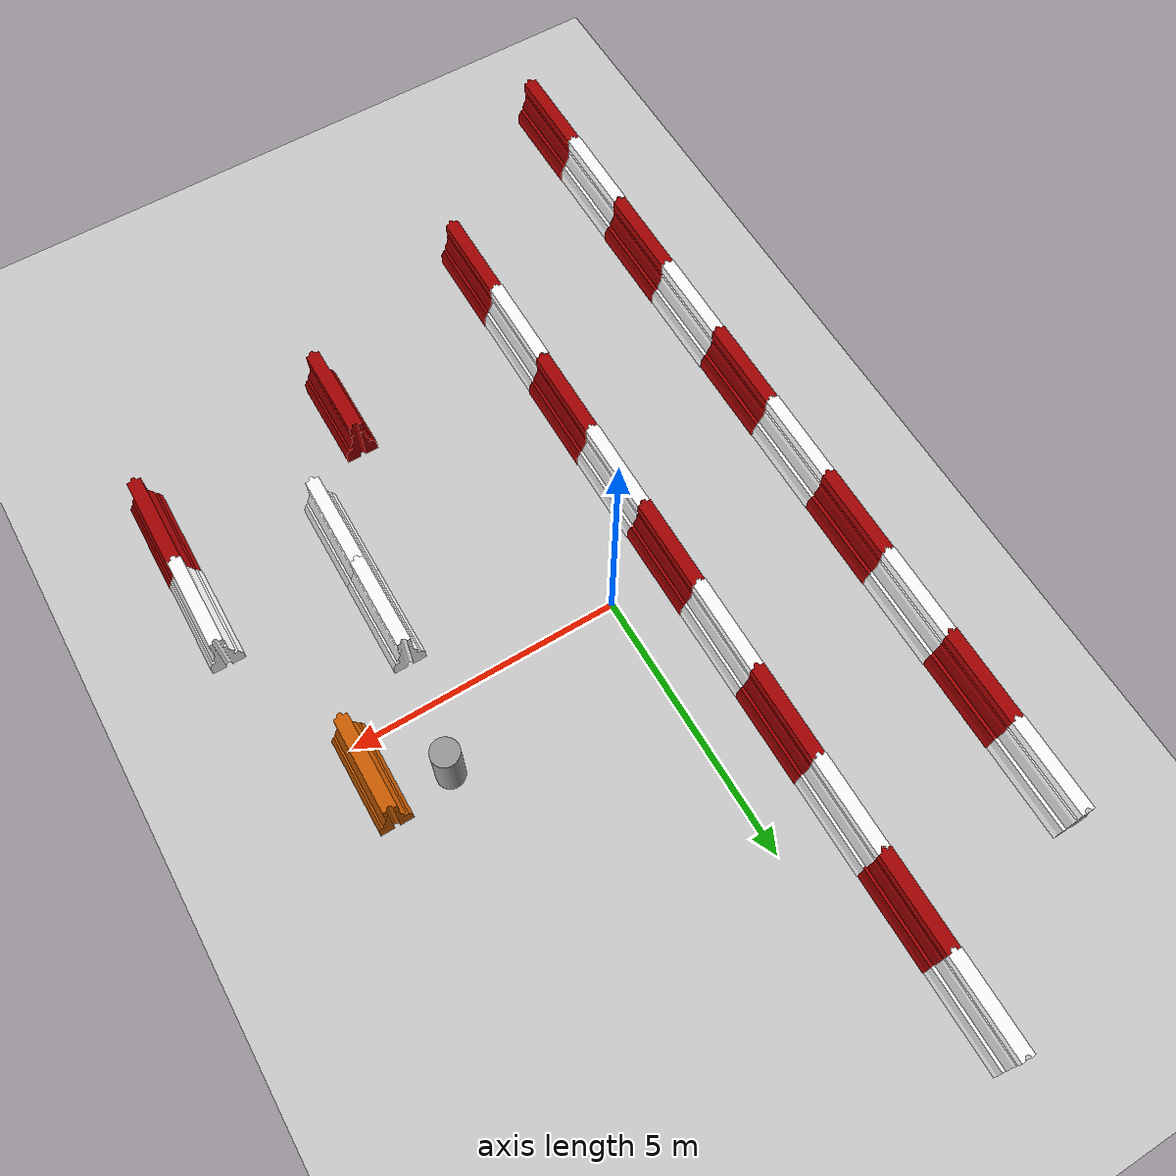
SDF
<sdf version="1.6">
 <world name="t-car_sim">
  <light name="sun" type="directional">
   <pose>0 0 10 0 -0 0</pose>
   <diffuse>0.8 0.8 0.8 1</diffuse>
   <specular>0.2 0.2 0.2 1</specular>
   <attenuation>
    <range>1000</range>
    <constant>0.9</constant>
    <linear>0.01</linear>
    <quadratic>0.001</quadratic>
   </attenuation>
   <direction>-0.5 0.1 -0.9</direction>
  </light>
  <model name="ground_plane">
   <static>1</static>
   <link name="link">
    <collision name="collision">
     <geometry><plane><normal>0 0 1</normal><size>100 100</size></plane></geometry>
     <surface><friction><ode><mu>100</mu><mu2>50</mu2></ode></friction></surface>
    </collision>
    <visual name="visual">
     <cast_shadows>0</cast_shadows>
     <geometry><plane><normal>0 0 1</normal><size>100 100</size></plane></geometry>
     <material>
      <script><uri>file://media/materials/scripts/gazebo.material</uri><name>Gazebo/Grey</name></script>
     </material>
    </visual>
   </link>
  </model>
  <gravity>0 0 -9.8</gravity>
  <magnetic_field>6e-06 2.3e-05 -4.2e-05</magnetic_field>
  <atmosphere type="adiabatic"/>
  <physics name="default_physics" default="0" type="ode">
   <max_step_size>0.001</max_step_size>
   <real_time_factor>1</real_time_factor>
   <real_time_update_rate>1000</real_time_update_rate>
  </physics>
  <scene><ambient>0.4 0.4 0.4 1</ambient><background>0.7 0.7 0.7 1</background><shadows>1</shadows></scene>
  <audio><device>default</device></audio>
  <spherical_coordinates>
   <surface_model>EARTH_WGS84</surface_model>
   <latitude_deg>0</latitude_deg>
   <longitude_deg>0</longitude_deg>
   <elevation>0</elevation>
   <heading_deg>0</heading_deg>
  </spherical_coordinates>
  <model name="10_barrier">
   <model name="redwhite_barrier">
    <model name="2barrier_red">
     <link name="link">
      <inertial>
       <mass>1</mass>
       <inertia><ixx>1</ixx><ixy>0</ixy><ixz>0</ixz><iyy>1</iyy><iyz>0</iyz><izz>1</izz></inertia>
      </inertial>
      <visual name="visual">
       <geometry>
        <mesh><uri>model://drc_practice_white_jersey_barrier/meshes/jersey_barrier.dae</uri></mesh>
       </geometry>
       <material>
        <script><name>ModelPreview_1::link::visual_MATERIAL_</name><uri>__default__</uri></script>
        <ambient>0.4 0.4 0.4 1</ambient>
        <shader type="vertex"><normal_map>__default__</normal_map></shader>
        <diffuse>0.643 0 0 1</diffuse>
        <specular>0.933 0.933 0.925 1</specular>
        <emissive>0.643 0 0 1</emissive>
       </material>
      </visual>
      <collision name="collision">
       <geometry>
        <mesh>
         <uri>/home/beyz/.gazebo/gazebo_models/drc_practice_white_jersey_barrier/meshes/jersey_barrier.dae</uri>
         <scale>1 1 1</scale>
        </mesh>
       </geometry>
       <surface>
        <friction>
         <ode><mu>1</mu><mu2>1</mu2><fdir1>0 0 0</fdir1><slip1>0</slip1><slip2>0</slip2></ode>
         <torsional>
          <coefficient>1</coefficient>
          <patch_radius>0</patch_radius>
          <surface_radius>0</surface_radius>
          <use_patch_radius>1</use_patch_radius>
          <ode><slip>0</slip></ode>
         </torsional>
        </friction>
        <bounce><restitution_coefficient>0</restitution_coefficient><threshold>1e+06</threshold></bounce>
        <contact>
         <collide_without_contact>0</collide_without_contact>
         <collide_without_contact_bitmask>1</collide_without_contact_bitmask>
         <collide_bitmask>1</collide_bitmask>
         <ode>
          <soft_cfm>0</soft_cfm>
          <soft_erp>0.2</soft_erp>
          <kp>1e+13</kp>
          <kd>1</kd>
          <max_vel>0.01</max_vel>
          <min_depth>0</min_depth>
         </ode>
         <bullet>
          <split_impulse>1</split_impulse>
          <split_impulse_penetration_threshold>-0.01</split_impulse_penetration_threshold>
          <soft_cfm>0</soft_cfm>
          <soft_erp>0.2</soft_erp>
          <kp>1e+13</kp>
          <kd>1</kd>
         </bullet>
        </contact>
       </surface>
      </collision>
     </link>
     <static>1</static>
     <pose>0.002119 -0.86074 0 0 -0 0</pose>
    </model>
    <model name="drc_practice_white_jersey_barrier">
     <static>1</static>
     <link name="link">
      <visual name="visual">
       <geometry>
        <mesh><uri>model://drc_practice_white_jersey_barrier/meshes/jersey_barrier.dae</uri></mesh>
       </geometry>
      </visual>
      <collision name="collision">
       <geometry>
        <mesh><uri>model://drc_practice_white_jersey_barrier/meshes/jersey_barrier.dae</uri></mesh>
       </geometry>
      </collision>
     </link>
     <pose>-0.00212 0.860737 0 0 -0 0</pose>
    </model>
    <static>0</static>
    <pose>-0.007812 6.89216 0 0 -0 0</pose>
   </model>
   <model name="redwhite_barrier_0">
    <model name="2barrier_red">
     <link name="link">
      <inertial>
       <mass>1</mass>
       <inertia><ixx>1</ixx><ixy>0</ixy><ixz>0</ixz><iyy>1</iyy><iyz>0</iyz><izz>1</izz></inertia>
      </inertial>
      <visual name="visual">
       <geometry>
        <mesh><uri>model://drc_practice_white_jersey_barrier/meshes/jersey_barrier.dae</uri></mesh>
       </geometry>
       <material>
        <script><name>ModelPreview_1::link::visual_MATERIAL_</name><uri>__default__</uri></script>
        <ambient>0.4 0.4 0.4 1</ambient>
        <shader type="vertex"><normal_map>__default__</normal_map></shader>
        <diffuse>0.643 0 0 1</diffuse>
        <specular>0.933 0.933 0.925 1</specular>
        <emissive>0.643 0 0 1</emissive>
       </material>
      </visual>
      <collision name="collision">
       <geometry>
        <mesh>
         <uri>/home/beyz/.gazebo/gazebo_models/drc_practice_white_jersey_barrier/meshes/jersey_barrier.dae</uri>
         <scale>1 1 1</scale>
        </mesh>
       </geometry>
       <surface>
        <friction>
         <ode><mu>1</mu><mu2>1</mu2><fdir1>0 0 0</fdir1><slip1>0</slip1><slip2>0</slip2></ode>
         <torsional>
          <coefficient>1</coefficient>
          <patch_radius>0</patch_radius>
          <surface_radius>0</surface_radius>
          <use_patch_radius>1</use_patch_radius>
          <ode><slip>0</slip></ode>
         </torsional>
        </friction>
        <bounce><restitution_coefficient>0</restitution_coefficient><threshold>1e+06</threshold></bounce>
        <contact>
         <collide_without_contact>0</collide_without_contact>
         <collide_without_contact_bitmask>1</collide_without_contact_bitmask>
         <collide_bitmask>1</collide_bitmask>
         <ode>
          <soft_cfm>0</soft_cfm>
          <soft_erp>0.2</soft_erp>
          <kp>1e+13</kp>
          <kd>1</kd>
          <max_vel>0.01</max_vel>
          <min_depth>0</min_depth>
         </ode>
         <bullet>
          <split_impulse>1</split_impulse>
          <split_impulse_penetration_threshold>-0.01</split_impulse_penetration_threshold>
          <soft_cfm>0</soft_cfm>
          <soft_erp>0.2</soft_erp>
          <kp>1e+13</kp>
          <kd>1</kd>
         </bullet>
        </contact>
       </surface>
      </collision>
     </link>
     <static>1</static>
     <pose>0.002119 -0.86074 0 0 -0 0</pose>
    </model>
    <model name="drc_practice_white_jersey_barrier">
     <static>1</static>
     <link name="link">
      <visual name="visual">
       <geometry>
        <mesh><uri>model://drc_practice_white_jersey_barrier/meshes/jersey_barrier.dae</uri></mesh>
       </geometry>
      </visual>
      <collision name="collision">
       <geometry>
        <mesh><uri>model://drc_practice_white_jersey_barrier/meshes/jersey_barrier.dae</uri></mesh>
       </geometry>
      </collision>
     </link>
     <pose>-0.00212 0.860737 0 0 -0 0</pose>
    </model>
    <static>0</static>
    <pose>-0.000137 3.46077 0 0 -0 0</pose>
   </model>
   <model name="redwhite_barrier_1">
    <model name="2barrier_red">
     <link name="link">
      <inertial>
       <mass>1</mass>
       <inertia><ixx>1</ixx><ixy>0</ixy><ixz>0</ixz><iyy>1</iyy><iyz>0</iyz><izz>1</izz></inertia>
      </inertial>
      <visual name="visual">
       <geometry>
        <mesh><uri>model://drc_practice_white_jersey_barrier/meshes/jersey_barrier.dae</uri></mesh>
       </geometry>
       <material>
        <script><name>ModelPreview_1::link::visual_MATERIAL_</name><uri>__default__</uri></script>
        <ambient>0.4 0.4 0.4 1</ambient>
        <shader type="vertex"><normal_map>__default__</normal_map></shader>
        <diffuse>0.643 0 0 1</diffuse>
        <specular>0.933 0.933 0.925 1</specular>
        <emissive>0.643 0 0 1</emissive>
       </material>
      </visual>
      <collision name="collision">
       <geometry>
        <mesh>
         <uri>/home/beyz/.gazebo/gazebo_models/drc_practice_white_jersey_barrier/meshes/jersey_barrier.dae</uri>
         <scale>1 1 1</scale>
        </mesh>
       </geometry>
       <surface>
        <friction>
         <ode><mu>1</mu><mu2>1</mu2><fdir1>0 0 0</fdir1><slip1>0</slip1><slip2>0</slip2></ode>
         <torsional>
          <coefficient>1</coefficient>
          <patch_radius>0</patch_radius>
          <surface_radius>0</surface_radius>
          <use_patch_radius>1</use_patch_radius>
          <ode><slip>0</slip></ode>
         </torsional>
        </friction>
        <bounce><restitution_coefficient>0</restitution_coefficient><threshold>1e+06</threshold></bounce>
        <contact>
         <collide_without_contact>0</collide_without_contact>
         <collide_without_contact_bitmask>1</collide_without_contact_bitmask>
         <collide_bitmask>1</collide_bitmask>
         <ode>
          <soft_cfm>0</soft_cfm>
          <soft_erp>0.2</soft_erp>
          <kp>1e+13</kp>
          <kd>1</kd>
          <max_vel>0.01</max_vel>
          <min_depth>0</min_depth>
         </ode>
         <bullet>
          <split_impulse>1</split_impulse>
          <split_impulse_penetration_threshold>-0.01</split_impulse_penetration_threshold>
          <soft_cfm>0</soft_cfm>
          <soft_erp>0.2</soft_erp>
          <kp>1e+13</kp>
          <kd>1</kd>
         </bullet>
        </contact>
       </surface>
      </collision>
     </link>
     <static>1</static>
     <pose>0.002119 -0.86074 0 0 -0 0</pose>
    </model>
    <model name="drc_practice_white_jersey_barrier">
     <static>1</static>
     <link name="link">
      <visual name="visual">
       <geometry>
        <mesh><uri>model://drc_practice_white_jersey_barrier/meshes/jersey_barrier.dae</uri></mesh>
       </geometry>
      </visual>
      <collision name="collision">
       <geometry>
        <mesh><uri>model://drc_practice_white_jersey_barrier/meshes/jersey_barrier.dae</uri></mesh>
       </geometry>
      </collision>
     </link>
     <pose>-0.00212 0.860737 0 0 -0 0</pose>
    </model>
    <static>0</static>
    <pose>0.001784 0.007151 0 0 -0 0</pose>
   </model>
   <model name="redwhite_barrier_2">
    <model name="2barrier_red">
     <link name="link">
      <inertial>
       <mass>1</mass>
       <inertia><ixx>1</ixx><ixy>0</ixy><ixz>0</ixz><iyy>1</iyy><iyz>0</iyz><izz>1</izz></inertia>
      </inertial>
      <visual name="visual">
       <geometry>
        <mesh><uri>model://drc_practice_white_jersey_barrier/meshes/jersey_barrier.dae</uri></mesh>
       </geometry>
       <material>
        <script><name>ModelPreview_1::link::visual_MATERIAL_</name><uri>__default__</uri></script>
        <ambient>0.4 0.4 0.4 1</ambient>
        <shader type="vertex"><normal_map>__default__</normal_map></shader>
        <diffuse>0.643 0 0 1</diffuse>
        <specular>0.933 0.933 0.925 1</specular>
        <emissive>0.643 0 0 1</emissive>
       </material>
      </visual>
      <collision name="collision">
       <geometry>
        <mesh>
         <uri>/home/beyz/.gazebo/gazebo_models/drc_practice_white_jersey_barrier/meshes/jersey_barrier.dae</uri>
         <scale>1 1 1</scale>
        </mesh>
       </geometry>
       <surface>
        <friction>
         <ode><mu>1</mu><mu2>1</mu2><fdir1>0 0 0</fdir1><slip1>0</slip1><slip2>0</slip2></ode>
         <torsional>
          <coefficient>1</coefficient>
          <patch_radius>0</patch_radius>
          <surface_radius>0</surface_radius>
          <use_patch_radius>1</use_patch_radius>
          <ode><slip>0</slip></ode>
         </torsional>
        </friction>
        <bounce><restitution_coefficient>0</restitution_coefficient><threshold>1e+06</threshold></bounce>
        <contact>
         <collide_without_contact>0</collide_without_contact>
         <collide_without_contact_bitmask>1</collide_without_contact_bitmask>
         <collide_bitmask>1</collide_bitmask>
         <ode>
          <soft_cfm>0</soft_cfm>
          <soft_erp>0.2</soft_erp>
          <kp>1e+13</kp>
          <kd>1</kd>
          <max_vel>0.01</max_vel>
          <min_depth>0</min_depth>
         </ode>
         <bullet>
          <split_impulse>1</split_impulse>
          <split_impulse_penetration_threshold>-0.01</split_impulse_penetration_threshold>
          <soft_cfm>0</soft_cfm>
          <soft_erp>0.2</soft_erp>
          <kp>1e+13</kp>
          <kd>1</kd>
         </bullet>
        </contact>
       </surface>
      </collision>
     </link>
     <static>1</static>
     <pose>0.002119 -0.86074 0 0 -0 0</pose>
    </model>
    <model name="drc_practice_white_jersey_barrier">
     <static>1</static>
     <link name="link">
      <visual name="visual">
       <geometry>
        <mesh><uri>model://drc_practice_white_jersey_barrier/meshes/jersey_barrier.dae</uri></mesh>
       </geometry>
      </visual>
      <collision name="collision">
       <geometry>
        <mesh><uri>model://drc_practice_white_jersey_barrier/meshes/jersey_barrier.dae</uri></mesh>
       </geometry>
      </collision>
     </link>
     <pose>-0.00212 0.860737 0 0 -0 0</pose>
    </model>
    <static>0</static>
    <pose>0.012333 -3.44246 0 0 -0 0</pose>
   </model>
   <model name="redwhite_barrier_3">
    <model name="2barrier_red">
     <link name="link">
      <inertial>
       <mass>1</mass>
       <inertia><ixx>1</ixx><ixy>0</ixy><ixz>0</ixz><iyy>1</iyy><iyz>0</iyz><izz>1</izz></inertia>
      </inertial>
      <visual name="visual">
       <geometry>
        <mesh><uri>model://drc_practice_white_jersey_barrier/meshes/jersey_barrier.dae</uri></mesh>
       </geometry>
       <material>
        <script><name>ModelPreview_1::link::visual_MATERIAL_</name><uri>__default__</uri></script>
        <ambient>0.4 0.4 0.4 1</ambient>
        <shader type="vertex"><normal_map>__default__</normal_map></shader>
        <diffuse>0.643 0 0 1</diffuse>
        <specular>0.933 0.933 0.925 1</specular>
        <emissive>0.643 0 0 1</emissive>
       </material>
      </visual>
      <collision name="collision">
       <geometry>
        <mesh>
         <uri>/home/beyz/.gazebo/gazebo_models/drc_practice_white_jersey_barrier/meshes/jersey_barrier.dae</uri>
         <scale>1 1 1</scale>
        </mesh>
       </geometry>
       <surface>
        <friction>
         <ode><mu>1</mu><mu2>1</mu2><fdir1>0 0 0</fdir1><slip1>0</slip1><slip2>0</slip2></ode>
         <torsional>
          <coefficient>1</coefficient>
          <patch_radius>0</patch_radius>
          <surface_radius>0</surface_radius>
          <use_patch_radius>1</use_patch_radius>
          <ode><slip>0</slip></ode>
         </torsional>
        </friction>
        <bounce><restitution_coefficient>0</restitution_coefficient><threshold>1e+06</threshold></bounce>
        <contact>
         <collide_without_contact>0</collide_without_contact>
         <collide_without_contact_bitmask>1</collide_without_contact_bitmask>
         <collide_bitmask>1</collide_bitmask>
         <ode>
          <soft_cfm>0</soft_cfm>
          <soft_erp>0.2</soft_erp>
          <kp>1e+13</kp>
          <kd>1</kd>
          <max_vel>0.01</max_vel>
          <min_depth>0</min_depth>
         </ode>
         <bullet>
          <split_impulse>1</split_impulse>
          <split_impulse_penetration_threshold>-0.01</split_impulse_penetration_threshold>
          <soft_cfm>0</soft_cfm>
          <soft_erp>0.2</soft_erp>
          <kp>1e+13</kp>
          <kd>1</kd>
         </bullet>
        </contact>
       </surface>
      </collision>
     </link>
     <static>1</static>
     <pose>0.002119 -0.86074 0 0 -0 0</pose>
    </model>
    <model name="drc_practice_white_jersey_barrier">
     <static>1</static>
     <link name="link">
      <visual name="visual">
       <geometry>
        <mesh><uri>model://drc_practice_white_jersey_barrier/meshes/jersey_barrier.dae</uri></mesh>
       </geometry>
      </visual>
      <collision name="collision">
       <geometry>
        <mesh><uri>model://drc_practice_white_jersey_barrier/meshes/jersey_barrier.dae</uri></mesh>
       </geometry>
      </collision>
     </link>
     <pose>-0.00212 0.860737 0 0 -0 0</pose>
    </model>
    <static>0</static>
    <pose>-0.006175 -6.91763 0 0 -0 0</pose>
   </model>
   <static>0</static>
   <pose>-4.24781 -1.58221 0 0 -0 0</pose>
  </model>
  <model name="10_barrier_0">
   <model name="redwhite_barrier">
    <model name="2barrier_red">
     <link name="link">
      <inertial>
       <mass>1</mass>
       <inertia><ixx>1</ixx><ixy>0</ixy><ixz>0</ixz><iyy>1</iyy><iyz>0</iyz><izz>1</izz></inertia>
      </inertial>
      <visual name="visual">
       <geometry>
        <mesh><uri>model://drc_practice_white_jersey_barrier/meshes/jersey_barrier.dae</uri></mesh>
       </geometry>
       <material>
        <script><name>ModelPreview_1::link::visual_MATERIAL_</name><uri>__default__</uri></script>
        <ambient>0.4 0.4 0.4 1</ambient>
        <shader type="vertex"><normal_map>__default__</normal_map></shader>
        <diffuse>0.643 0 0 1</diffuse>
        <specular>0.933 0.933 0.925 1</specular>
        <emissive>0.643 0 0 1</emissive>
       </material>
      </visual>
      <collision name="collision">
       <geometry>
        <mesh>
         <uri>/home/beyz/.gazebo/gazebo_models/drc_practice_white_jersey_barrier/meshes/jersey_barrier.dae</uri>
         <scale>1 1 1</scale>
        </mesh>
       </geometry>
       <surface>
        <friction>
         <ode><mu>1</mu><mu2>1</mu2><fdir1>0 0 0</fdir1><slip1>0</slip1><slip2>0</slip2></ode>
         <torsional>
          <coefficient>1</coefficient>
          <patch_radius>0</patch_radius>
          <surface_radius>0</surface_radius>
          <use_patch_radius>1</use_patch_radius>
          <ode><slip>0</slip></ode>
         </torsional>
        </friction>
        <bounce><restitution_coefficient>0</restitution_coefficient><threshold>1e+06</threshold></bounce>
        <contact>
         <collide_without_contact>0</collide_without_contact>
         <collide_without_contact_bitmask>1</collide_without_contact_bitmask>
         <collide_bitmask>1</collide_bitmask>
         <ode>
          <soft_cfm>0</soft_cfm>
          <soft_erp>0.2</soft_erp>
          <kp>1e+13</kp>
          <kd>1</kd>
          <max_vel>0.01</max_vel>
          <min_depth>0</min_depth>
         </ode>
         <bullet>
          <split_impulse>1</split_impulse>
          <split_impulse_penetration_threshold>-0.01</split_impulse_penetration_threshold>
          <soft_cfm>0</soft_cfm>
          <soft_erp>0.2</soft_erp>
          <kp>1e+13</kp>
          <kd>1</kd>
         </bullet>
        </contact>
       </surface>
      </collision>
     </link>
     <static>1</static>
     <pose>0.002119 -0.86074 0 0 -0 0</pose>
    </model>
    <model name="drc_practice_white_jersey_barrier">
     <static>1</static>
     <link name="link">
      <visual name="visual">
       <geometry>
        <mesh><uri>model://drc_practice_white_jersey_barrier/meshes/jersey_barrier.dae</uri></mesh>
       </geometry>
      </visual>
      <collision name="collision">
       <geometry>
        <mesh><uri>model://drc_practice_white_jersey_barrier/meshes/jersey_barrier.dae</uri></mesh>
       </geometry>
      </collision>
     </link>
     <pose>-0.00212 0.860737 0 0 -0 0</pose>
    </model>
    <static>0</static>
    <pose>-0.007812 6.89216 0 0 -0 0</pose>
   </model>
   <model name="redwhite_barrier_0">
    <model name="2barrier_red">
     <link name="link">
      <inertial>
       <mass>1</mass>
       <inertia><ixx>1</ixx><ixy>0</ixy><ixz>0</ixz><iyy>1</iyy><iyz>0</iyz><izz>1</izz></inertia>
      </inertial>
      <visual name="visual">
       <geometry>
        <mesh><uri>model://drc_practice_white_jersey_barrier/meshes/jersey_barrier.dae</uri></mesh>
       </geometry>
       <material>
        <script><name>ModelPreview_1::link::visual_MATERIAL_</name><uri>__default__</uri></script>
        <ambient>0.4 0.4 0.4 1</ambient>
        <shader type="vertex"><normal_map>__default__</normal_map></shader>
        <diffuse>0.643 0 0 1</diffuse>
        <specular>0.933 0.933 0.925 1</specular>
        <emissive>0.643 0 0 1</emissive>
       </material>
      </visual>
      <collision name="collision">
       <geometry>
        <mesh>
         <uri>/home/beyz/.gazebo/gazebo_models/drc_practice_white_jersey_barrier/meshes/jersey_barrier.dae</uri>
         <scale>1 1 1</scale>
        </mesh>
       </geometry>
       <surface>
        <friction>
         <ode><mu>1</mu><mu2>1</mu2><fdir1>0 0 0</fdir1><slip1>0</slip1><slip2>0</slip2></ode>
         <torsional>
          <coefficient>1</coefficient>
          <patch_radius>0</patch_radius>
          <surface_radius>0</surface_radius>
          <use_patch_radius>1</use_patch_radius>
          <ode><slip>0</slip></ode>
         </torsional>
        </friction>
        <bounce><restitution_coefficient>0</restitution_coefficient><threshold>1e+06</threshold></bounce>
        <contact>
         <collide_without_contact>0</collide_without_contact>
         <collide_without_contact_bitmask>1</collide_without_contact_bitmask>
         <collide_bitmask>1</collide_bitmask>
         <ode>
          <soft_cfm>0</soft_cfm>
          <soft_erp>0.2</soft_erp>
          <kp>1e+13</kp>
          <kd>1</kd>
          <max_vel>0.01</max_vel>
          <min_depth>0</min_depth>
         </ode>
         <bullet>
          <split_impulse>1</split_impulse>
          <split_impulse_penetration_threshold>-0.01</split_impulse_penetration_threshold>
          <soft_cfm>0</soft_cfm>
          <soft_erp>0.2</soft_erp>
          <kp>1e+13</kp>
          <kd>1</kd>
         </bullet>
        </contact>
       </surface>
      </collision>
     </link>
     <static>1</static>
     <pose>0.002119 -0.86074 0 0 -0 0</pose>
    </model>
    <model name="drc_practice_white_jersey_barrier">
     <static>1</static>
     <link name="link">
      <visual name="visual">
       <geometry>
        <mesh><uri>model://drc_practice_white_jersey_barrier/meshes/jersey_barrier.dae</uri></mesh>
       </geometry>
      </visual>
      <collision name="collision">
       <geometry>
        <mesh><uri>model://drc_practice_white_jersey_barrier/meshes/jersey_barrier.dae</uri></mesh>
       </geometry>
      </collision>
     </link>
     <pose>-0.00212 0.860737 0 0 -0 0</pose>
    </model>
    <static>0</static>
    <pose>-0.000137 3.46077 0 0 -0 0</pose>
   </model>
   <model name="redwhite_barrier_1">
    <model name="2barrier_red">
     <link name="link">
      <inertial>
       <mass>1</mass>
       <inertia><ixx>1</ixx><ixy>0</ixy><ixz>0</ixz><iyy>1</iyy><iyz>0</iyz><izz>1</izz></inertia>
      </inertial>
      <visual name="visual">
       <geometry>
        <mesh><uri>model://drc_practice_white_jersey_barrier/meshes/jersey_barrier.dae</uri></mesh>
       </geometry>
       <material>
        <script><name>ModelPreview_1::link::visual_MATERIAL_</name><uri>__default__</uri></script>
        <ambient>0.4 0.4 0.4 1</ambient>
        <shader type="vertex"><normal_map>__default__</normal_map></shader>
        <diffuse>0.643 0 0 1</diffuse>
        <specular>0.933 0.933 0.925 1</specular>
        <emissive>0.643 0 0 1</emissive>
       </material>
      </visual>
      <collision name="collision">
       <geometry>
        <mesh>
         <uri>/home/beyz/.gazebo/gazebo_models/drc_practice_white_jersey_barrier/meshes/jersey_barrier.dae</uri>
         <scale>1 1 1</scale>
        </mesh>
       </geometry>
       <surface>
        <friction>
         <ode><mu>1</mu><mu2>1</mu2><fdir1>0 0 0</fdir1><slip1>0</slip1><slip2>0</slip2></ode>
         <torsional>
          <coefficient>1</coefficient>
          <patch_radius>0</patch_radius>
          <surface_radius>0</surface_radius>
          <use_patch_radius>1</use_patch_radius>
          <ode><slip>0</slip></ode>
         </torsional>
        </friction>
        <bounce><restitution_coefficient>0</restitution_coefficient><threshold>1e+06</threshold></bounce>
        <contact>
         <collide_without_contact>0</collide_without_contact>
         <collide_without_contact_bitmask>1</collide_without_contact_bitmask>
         <collide_bitmask>1</collide_bitmask>
         <ode>
          <soft_cfm>0</soft_cfm>
          <soft_erp>0.2</soft_erp>
          <kp>1e+13</kp>
          <kd>1</kd>
          <max_vel>0.01</max_vel>
          <min_depth>0</min_depth>
         </ode>
         <bullet>
          <split_impulse>1</split_impulse>
          <split_impulse_penetration_threshold>-0.01</split_impulse_penetration_threshold>
          <soft_cfm>0</soft_cfm>
          <soft_erp>0.2</soft_erp>
          <kp>1e+13</kp>
          <kd>1</kd>
         </bullet>
        </contact>
       </surface>
      </collision>
     </link>
     <static>1</static>
     <pose>0.002119 -0.86074 0 0 -0 0</pose>
    </model>
    <model name="drc_practice_white_jersey_barrier">
     <static>1</static>
     <link name="link">
      <visual name="visual">
       <geometry>
        <mesh><uri>model://drc_practice_white_jersey_barrier/meshes/jersey_barrier.dae</uri></mesh>
       </geometry>
      </visual>
      <collision name="collision">
       <geometry>
        <mesh><uri>model://drc_practice_white_jersey_barrier/meshes/jersey_barrier.dae</uri></mesh>
       </geometry>
      </collision>
     </link>
     <pose>-0.00212 0.860737 0 0 -0 0</pose>
    </model>
    <static>0</static>
    <pose>0.001784 0.007151 0 0 -0 0</pose>
   </model>
   <model name="redwhite_barrier_2">
    <model name="2barrier_red">
     <link name="link">
      <inertial>
       <mass>1</mass>
       <inertia><ixx>1</ixx><ixy>0</ixy><ixz>0</ixz><iyy>1</iyy><iyz>0</iyz><izz>1</izz></inertia>
      </inertial>
      <visual name="visual">
       <geometry>
        <mesh><uri>model://drc_practice_white_jersey_barrier/meshes/jersey_barrier.dae</uri></mesh>
       </geometry>
       <material>
        <script><name>ModelPreview_1::link::visual_MATERIAL_</name><uri>__default__</uri></script>
        <ambient>0.4 0.4 0.4 1</ambient>
        <shader type="vertex"><normal_map>__default__</normal_map></shader>
        <diffuse>0.643 0 0 1</diffuse>
        <specular>0.933 0.933 0.925 1</specular>
        <emissive>0.643 0 0 1</emissive>
       </material>
      </visual>
      <collision name="collision">
       <geometry>
        <mesh>
         <uri>/home/beyz/.gazebo/gazebo_models/drc_practice_white_jersey_barrier/meshes/jersey_barrier.dae</uri>
         <scale>1 1 1</scale>
        </mesh>
       </geometry>
       <surface>
        <friction>
         <ode><mu>1</mu><mu2>1</mu2><fdir1>0 0 0</fdir1><slip1>0</slip1><slip2>0</slip2></ode>
         <torsional>
          <coefficient>1</coefficient>
          <patch_radius>0</patch_radius>
          <surface_radius>0</surface_radius>
          <use_patch_radius>1</use_patch_radius>
          <ode><slip>0</slip></ode>
         </torsional>
        </friction>
        <bounce><restitution_coefficient>0</restitution_coefficient><threshold>1e+06</threshold></bounce>
        <contact>
         <collide_without_contact>0</collide_without_contact>
         <collide_without_contact_bitmask>1</collide_without_contact_bitmask>
         <collide_bitmask>1</collide_bitmask>
         <ode>
          <soft_cfm>0</soft_cfm>
          <soft_erp>0.2</soft_erp>
          <kp>1e+13</kp>
          <kd>1</kd>
          <max_vel>0.01</max_vel>
          <min_depth>0</min_depth>
         </ode>
         <bullet>
          <split_impulse>1</split_impulse>
          <split_impulse_penetration_threshold>-0.01</split_impulse_penetration_threshold>
          <soft_cfm>0</soft_cfm>
          <soft_erp>0.2</soft_erp>
          <kp>1e+13</kp>
          <kd>1</kd>
         </bullet>
        </contact>
       </surface>
      </collision>
     </link>
     <static>1</static>
     <pose>0.002119 -0.86074 0 0 -0 0</pose>
    </model>
    <model name="drc_practice_white_jersey_barrier">
     <static>1</static>
     <link name="link">
      <visual name="visual">
       <geometry>
        <mesh><uri>model://drc_practice_white_jersey_barrier/meshes/jersey_barrier.dae</uri></mesh>
       </geometry>
      </visual>
      <collision name="collision">
       <geometry>
        <mesh><uri>model://drc_practice_white_jersey_barrier/meshes/jersey_barrier.dae</uri></mesh>
       </geometry>
      </collision>
     </link>
     <pose>-0.00212 0.860737 0 0 -0 0</pose>
    </model>
    <static>0</static>
    <pose>0.012333 -3.44246 0 0 -0 0</pose>
   </model>
   <model name="redwhite_barrier_3">
    <model name="2barrier_red">
     <link name="link">
      <inertial>
       <mass>1</mass>
       <inertia><ixx>1</ixx><ixy>0</ixy><ixz>0</ixz><iyy>1</iyy><iyz>0</iyz><izz>1</izz></inertia>
      </inertial>
      <visual name="visual">
       <geometry>
        <mesh><uri>model://drc_practice_white_jersey_barrier/meshes/jersey_barrier.dae</uri></mesh>
       </geometry>
       <material>
        <script><name>ModelPreview_1::link::visual_MATERIAL_</name><uri>__default__</uri></script>
        <ambient>0.4 0.4 0.4 1</ambient>
        <shader type="vertex"><normal_map>__default__</normal_map></shader>
        <diffuse>0.643 0 0 1</diffuse>
        <specular>0.933 0.933 0.925 1</specular>
        <emissive>0.643 0 0 1</emissive>
       </material>
      </visual>
      <collision name="collision">
       <geometry>
        <mesh>
         <uri>/home/beyz/.gazebo/gazebo_models/drc_practice_white_jersey_barrier/meshes/jersey_barrier.dae</uri>
         <scale>1 1 1</scale>
        </mesh>
       </geometry>
       <surface>
        <friction>
         <ode><mu>1</mu><mu2>1</mu2><fdir1>0 0 0</fdir1><slip1>0</slip1><slip2>0</slip2></ode>
         <torsional>
          <coefficient>1</coefficient>
          <patch_radius>0</patch_radius>
          <surface_radius>0</surface_radius>
          <use_patch_radius>1</use_patch_radius>
          <ode><slip>0</slip></ode>
         </torsional>
        </friction>
        <bounce><restitution_coefficient>0</restitution_coefficient><threshold>1e+06</threshold></bounce>
        <contact>
         <collide_without_contact>0</collide_without_contact>
         <collide_without_contact_bitmask>1</collide_without_contact_bitmask>
         <collide_bitmask>1</collide_bitmask>
         <ode>
          <soft_cfm>0</soft_cfm>
          <soft_erp>0.2</soft_erp>
          <kp>1e+13</kp>
          <kd>1</kd>
          <max_vel>0.01</max_vel>
          <min_depth>0</min_depth>
         </ode>
         <bullet>
          <split_impulse>1</split_impulse>
          <split_impulse_penetration_threshold>-0.01</split_impulse_penetration_threshold>
          <soft_cfm>0</soft_cfm>
          <soft_erp>0.2</soft_erp>
          <kp>1e+13</kp>
          <kd>1</kd>
         </bullet>
        </contact>
       </surface>
      </collision>
     </link>
     <static>1</static>
     <pose>0.002119 -0.86074 0 0 -0 0</pose>
    </model>
    <model name="drc_practice_white_jersey_barrier">
     <static>1</static>
     <link name="link">
      <visual name="visual">
       <geometry>
        <mesh><uri>model://drc_practice_white_jersey_barrier/meshes/jersey_barrier.dae</uri></mesh>
       </geometry>
      </visual>
      <collision name="collision">
       <geometry>
        <mesh><uri>model://drc_practice_white_jersey_barrier/meshes/jersey_barrier.dae</uri></mesh>
       </geometry>
      </collision>
     </link>
     <pose>-0.00212 0.860737 0 0 -0 0</pose>
    </model>
    <static>0</static>
    <pose>-0.006175 -6.91763 0 0 -0 0</pose>
   </model>
   <static>0</static>
   <pose>-1.20385 0.73467 0 0 -0 0</pose>
  </model>
  <model name="2barrier_red_0">
   <link name="link">
    <inertial>
     <mass>1</mass>
     <inertia><ixx>1</ixx><ixy>0</ixy><ixz>0</ixz><iyy>1</iyy><iyz>0</iyz><izz>1</izz></inertia>
    </inertial>
    <visual name="visual">
     <geometry>
      <mesh><uri>model://drc_practice_white_jersey_barrier/meshes/jersey_barrier.dae</uri></mesh>
     </geometry>
     <material>
      <script><name>ModelPreview_1::link::visual_MATERIAL_</name><uri>__default__</uri></script>
      <ambient>0.4 0.4 0.4 1</ambient>
      <shader type="vertex"><normal_map>__default__</normal_map></shader>
      <diffuse>0.643 0 0 1</diffuse>
      <specular>0.933 0.933 0.925 1</specular>
      <emissive>0.643 0 0 1</emissive>
     </material>
    </visual>
    <collision name="collision">
     <geometry>
      <mesh>
       <uri>/home/beyz/.gazebo/gazebo_models/drc_practice_white_jersey_barrier/meshes/jersey_barrier.dae</uri>
       <scale>1 1 1</scale>
      </mesh>
     </geometry>
     <surface>
      <friction>
       <ode><mu>1</mu><mu2>1</mu2><fdir1>0 0 0</fdir1><slip1>0</slip1><slip2>0</slip2></ode>
       <torsional>
        <coefficient>1</coefficient>
        <patch_radius>0</patch_radius>
        <surface_radius>0</surface_radius>
        <use_patch_radius>1</use_patch_radius>
        <ode><slip>0</slip></ode>
       </torsional>
      </friction>
      <bounce><restitution_coefficient>0</restitution_coefficient><threshold>1e+06</threshold></bounce>
      <contact>
       <collide_without_contact>0</collide_without_contact>
       <collide_without_contact_bitmask>1</collide_without_contact_bitmask>
       <collide_bitmask>1</collide_bitmask>
       <ode>
        <soft_cfm>0</soft_cfm>
        <soft_erp>0.2</soft_erp>
        <kp>1e+13</kp>
        <kd>1</kd>
        <max_vel>0.01</max_vel>
        <min_depth>0</min_depth>
       </ode>
       <bullet>
        <split_impulse>1</split_impulse>
        <split_impulse_penetration_threshold>-0.01</split_impulse_penetration_threshold>
        <soft_cfm>0</soft_cfm>
        <soft_erp>0.2</soft_erp>
        <kp>1e+13</kp>
        <kd>1</kd>
       </bullet>
      </contact>
     </surface>
    </collision>
   </link>
   <static>1</static>
   <pose>2.35627 -5.72734 0 0 -0 0</pose>
  </model>
  <model name="double_barrier">
   <model name="drc_practice_white_jersey_barrier">
    <static>1</static>
    <link name="link">
     <visual name="visual">
      <geometry>
       <mesh><uri>model://drc_practice_white_jersey_barrier/meshes/jersey_barrier.dae</uri></mesh>
      </geometry>
     </visual>
     <collision name="collision">
      <geometry>
       <mesh><uri>model://drc_practice_white_jersey_barrier/meshes/jersey_barrier.dae</uri></mesh>
      </geometry>
     </collision>
    </link>
    <pose>0.005043 0.865232 0 0 -0 0</pose>
   </model>
   <model name="drc_practice_white_jersey_barrier_clone">
    <static>1</static>
    <link name="link">
     <visual name="visual">
      <geometry>
       <mesh><uri>model://drc_practice_white_jersey_barrier/meshes/jersey_barrier.dae</uri></mesh>
      </geometry>
     </visual>
     <collision name="collision">
      <geometry>
       <mesh><uri>model://drc_practice_white_jersey_barrier/meshes/jersey_barrier.dae</uri></mesh>
      </geometry>
     </collision>
    </link>
    <pose>-0.005041 -0.865231 -0 0 -0 0</pose>
   </model>
   <static>0</static>
   <pose>3.48944 -2.55384 0 0 -0 0</pose>
  </model>
  <model name="grey_cylinder">
   <link name="link">
    <inertial>
     <mass>1</mass>
     <inertia><ixx>0.145833</ixx><ixy>0</ixy><ixz>0</ixz><iyy>0.145833</iyy><iyz>0</iyz><izz>0.125</izz></inertia>
    </inertial>
    <visual name="visual">
     <geometry><cylinder><radius>0.252534</radius><length>1.21546</length></cylinder></geometry>
     <material>
      <script><name>Gazebo/Grey</name><uri>file://media/materials/scripts/gazebo.material</uri></script>
      <ambient>0.827 0.843 0.812 1</ambient>
      <shader type="vertex"><normal_map>__default__</normal_map></shader>
      <diffuse>0.827 0.843 0.812 1</diffuse>
      <specular>0.933 0.933 0.925 1</specular>
      <emissive>0.333 0.341 0.325 1</emissive>
     </material>
    </visual>
    <collision name="collision">
     <geometry><cylinder><radius>0.252534</radius><length>1.21546</length></cylinder></geometry>
     <surface>
      <friction>
       <ode><mu>1</mu><mu2>1</mu2><fdir1>0 0 0</fdir1><slip1>0</slip1><slip2>0</slip2></ode>
       <torsional>
        <coefficient>1</coefficient>
        <patch_radius>0</patch_radius>
        <surface_radius>0</surface_radius>
        <use_patch_radius>1</use_patch_radius>
        <ode><slip>0</slip></ode>
       </torsional>
      </friction>
      <bounce><restitution_coefficient>0</restitution_coefficient><threshold>1e+06</threshold></bounce>
      <contact>
       <collide_without_contact>0</collide_without_contact>
       <collide_without_contact_bitmask>1</collide_without_contact_bitmask>
       <collide_bitmask>1</collide_bitmask>
       <ode>
        <soft_cfm>0</soft_cfm>
        <soft_erp>0.2</soft_erp>
        <kp>1e+13</kp>
        <kd>1</kd>
        <max_vel>0.01</max_vel>
        <min_depth>0</min_depth>
       </ode>
       <bullet>
        <split_impulse>1</split_impulse>
        <split_impulse_penetration_threshold>-0.01</split_impulse_penetration_threshold>
        <soft_cfm>0</soft_cfm>
        <soft_erp>0.2</soft_erp>
        <kp>1e+13</kp>
        <kd>1</kd>
       </bullet>
      </contact>
     </surface>
    </collision>
   </link>
   <static>0</static>
   <pose>3.81052 1.19198 0.607728 -2e-06 1e-06 -3e-06</pose>
  </model>
  <model name="redwhite_barrier_4">
   <model name="2barrier_red">
    <link name="link">
     <inertial>
      <mass>1</mass>
      <inertia><ixx>1</ixx><ixy>0</ixy><ixz>0</ixz><iyy>1</iyy><iyz>0</iyz><izz>1</izz></inertia>
     </inertial>
     <visual name="visual">
      <geometry>
       <mesh><uri>model://drc_practice_white_jersey_barrier/meshes/jersey_barrier.dae</uri></mesh>
      </geometry>
      <material>
       <script><name>ModelPreview_1::link::visual_MATERIAL_</name><uri>__default__</uri></script>
       <ambient>0.4 0.4 0.4 1</ambient>
       <shader type="vertex"><normal_map>__default__</normal_map></shader>
       <diffuse>0.643 0 0 1</diffuse>
       <specular>0.933 0.933 0.925 1</specular>
       <emissive>0.643 0 0 1</emissive>
      </material>
     </visual>
     <collision name="collision">
      <geometry>
       <mesh>
        <uri>/home/beyz/.gazebo/gazebo_models/drc_practice_white_jersey_barrier/meshes/jersey_barrier.dae</uri>
        <scale>1 1 1</scale>
       </mesh>
      </geometry>
      <surface>
       <friction>
        <ode><mu>1</mu><mu2>1</mu2><fdir1>0 0 0</fdir1><slip1>0</slip1><slip2>0</slip2></ode>
        <torsional>
         <coefficient>1</coefficient>
         <patch_radius>0</patch_radius>
         <surface_radius>0</surface_radius>
         <use_patch_radius>1</use_patch_radius>
         <ode><slip>0</slip></ode>
        </torsional>
       </friction>
       <bounce><restitution_coefficient>0</restitution_coefficient><threshold>1e+06</threshold></bounce>
       <contact>
        <collide_without_contact>0</collide_without_contact>
        <collide_without_contact_bitmask>1</collide_without_contact_bitmask>
        <collide_bitmask>1</collide_bitmask>
        <ode>
         <soft_cfm>0</soft_cfm>
         <soft_erp>0.2</soft_erp>
         <kp>1e+13</kp>
         <kd>1</kd>
         <max_vel>0.01</max_vel>
         <min_depth>0</min_depth>
        </ode>
        <bullet>
         <split_impulse>1</split_impulse>
         <split_impulse_penetration_threshold>-0.01</split_impulse_penetration_threshold>
         <soft_cfm>0</soft_cfm>
         <soft_erp>0.2</soft_erp>
         <kp>1e+13</kp>
         <kd>1</kd>
        </bullet>
       </contact>
      </surface>
     </collision>
    </link>
    <static>1</static>
    <pose>0.002119 -0.86074 0 0 -0 0</pose>
   </model>
   <model name="drc_practice_white_jersey_barrier">
    <static>1</static>
    <link name="link">
     <visual name="visual">
      <geometry>
       <mesh><uri>model://drc_practice_white_jersey_barrier/meshes/jersey_barrier.dae</uri></mesh>
      </geometry>
     </visual>
     <collision name="collision">
      <geometry>
       <mesh><uri>model://drc_practice_white_jersey_barrier/meshes/jersey_barrier.dae</uri></mesh>
      </geometry>
     </collision>
    </link>
    <pose>-0.00212 0.860737 0 0 -0 0</pose>
   </model>
   <static>0</static>
   <pose>6.12846 -4.10863 0 0 -0 0</pose>
  </model>
  <model name="drc_practice_white_jersey_barrier_orange3">
   <link name="link">
    <inertial>
     <mass>1</mass>
     <inertia><ixx>1</ixx><ixy>0</ixy><ixz>0</ixz><iyy>1</iyy><iyz>0</iyz><izz>1</izz></inertia>
    </inertial>
    <visual name="visual">
     <geometry>
      <mesh><uri>model://drc_practice_white_jersey_barrier/meshes/jersey_barrier.dae</uri></mesh>
     </geometry>
     <material>
      <script><name>ModelPreview_1::link::visual_MATERIAL_</name><uri>__default__</uri></script>
      <ambient>0.808 0.361 0 1</ambient>
      <shader type="vertex"><normal_map>__default__</normal_map></shader>
      <diffuse>0.808 0.361 0 1</diffuse>
      <specular>0.808 0.361 0 1</specular>
      <emissive>0.561 0.349 0.008 1</emissive>
     </material>
    </visual>
    <collision name="collision">
     <geometry>
      <mesh>
       <uri>/home/beyz/.gazebo/gazebo_models/drc_practice_white_jersey_barrier/meshes/jersey_barrier.dae</uri>
       <scale>1 1 1</scale>
      </mesh>
     </geometry>
     <surface>
      <friction>
       <ode><mu>1</mu><mu2>1</mu2><fdir1>0 0 0</fdir1><slip1>0</slip1><slip2>0</slip2></ode>
       <torsional>
        <coefficient>1</coefficient>
        <patch_radius>0</patch_radius>
        <surface_radius>0</surface_radius>
        <use_patch_radius>1</use_patch_radius>
        <ode><slip>0</slip></ode>
       </torsional>
      </friction>
      <bounce><restitution_coefficient>0</restitution_coefficient><threshold>1e+06</threshold></bounce>
      <contact>
       <collide_without_contact>0</collide_without_contact>
       <collide_without_contact_bitmask>1</collide_without_contact_bitmask>
       <collide_bitmask>1</collide_bitmask>
       <ode>
        <soft_cfm>0</soft_cfm>
        <soft_erp>0.2</soft_erp>
        <kp>1e+13</kp>
        <kd>1</kd>
        <max_vel>0.01</max_vel>
        <min_depth>0</min_depth>
       </ode>
       <bullet>
        <split_impulse>1</split_impulse>
        <split_impulse_penetration_threshold>-0.01</split_impulse_penetration_threshold>
        <soft_cfm>0</soft_cfm>
        <soft_erp>0.2</soft_erp>
        <kp>1e+13</kp>
        <kd>1</kd>
       </bullet>
      </contact>
     </surface>
    </collision>
   </link>
   <static>1</static>
   <pose>4.94959 0.643965 0 0 -0 0</pose>
  </model>
 </world>
</sdf>
